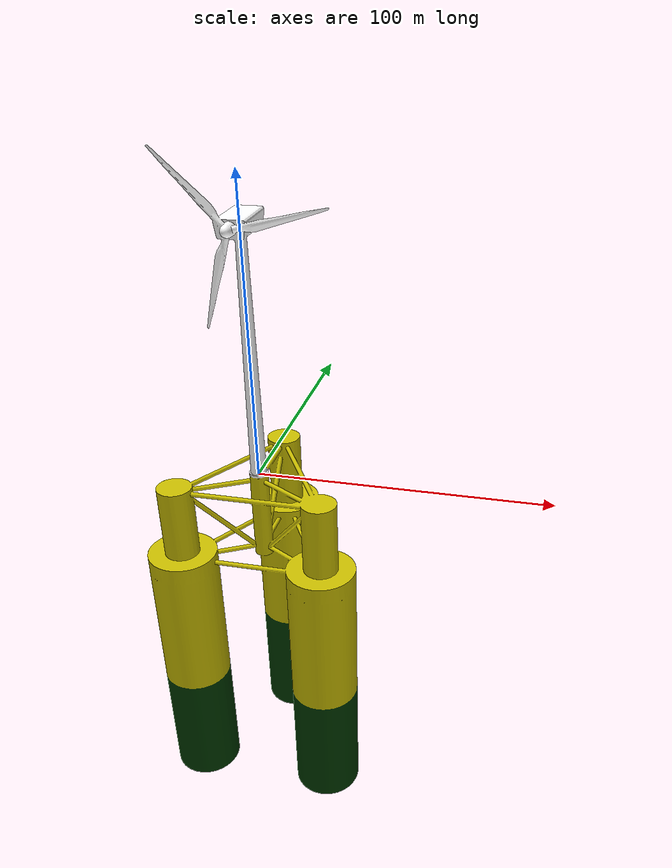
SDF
<?xml version="1.0"?>
<sdf version="1.10">
    <model name="OffShore Wind Turbine">
        <publish_render>false</publish_render>
        <renderer_type_name></renderer_type_name>

        <pose>0 0 0 0 0 0</pose>
        <static>true</static>
        <link name="link">
            <collision name="collision">
                <geometry>
                    <mesh>
                        <uri>./meshes/offshore_wind_turbine.stl</uri>
                        <scale>1 1 1</scale>
                    </mesh>
                </geometry>
            </collision>
            <visual name="visual">
                <geometry>
                    <mesh>
                        <uri>./meshes/offshore_wind_turbine.dae</uri>
                        <scale>1 1 1</scale>
                    </mesh>
                </geometry>
            </visual>
        </link>
    </model>
</sdf>
